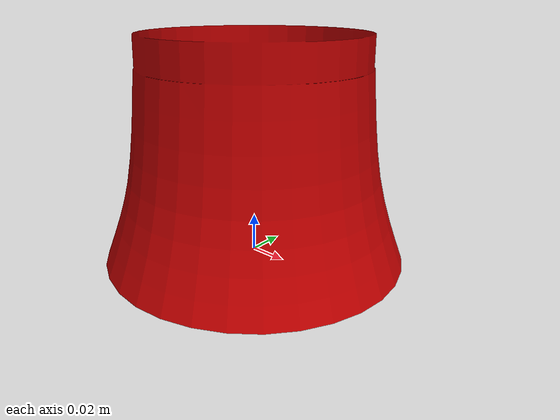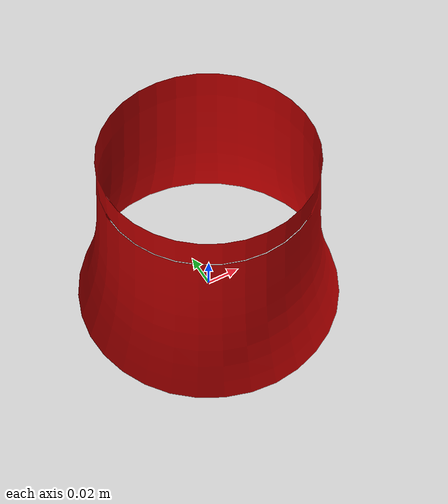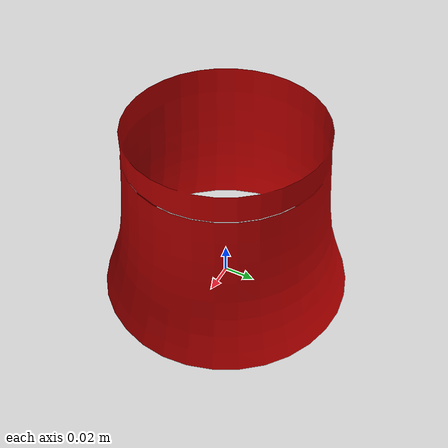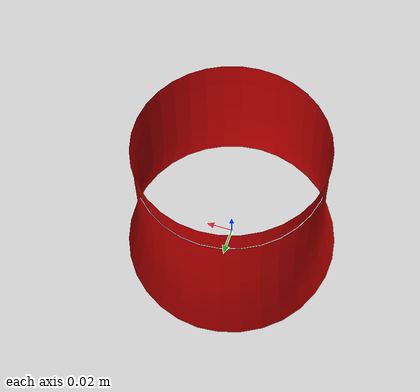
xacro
<?xml version="1.0"?>
<robot name="kuka_lwr_arm" xmlns:sensor="http://playerstage.sourceforge.net/gazebo/xmlschema/#sensor"
       xmlns:controller="http://playerstage.sourceforge.net/gazebo/xmlschema/#controller"
       xmlns:interface="http://playerstage.sourceforge.net/gazebo/xmlschema/#interface"
       xmlns:xacro="http://ros.org/wiki/xacro">

  <!-- Define materials -->
  <material name="UniHB-Red">
    <color rgba="0.8 0.0 0.0 1.0"/>
  </material>

  <material name="Black">
    <color rgba="0.0 0.0 0.0 1.0"/>
  </material>

  <!-- Include utility definitions -->
  <xacro:include filename="$(find iai_kuka_lwr4_description)/defs/util_defs.xml"/>

  <!-- Properties for arm elements -->
  <xacro:property name="arm_elem_base_mass" value="2.0"/>
  <xacro:property name="arm_elem_link_mass" value="2.0"/>
  <xacro:property name="arm_elem_ball_link_mass" value="2.0"/>
  <xacro:property name="arm_elem_end_link_mass" value="2.0"/>
  <xacro:property name="arm_elem_flange_link_mass" value="0.5"/>
  <xacro:property name="safety_controller_k_pos" value="100"/>
  <xacro:property name="safety_controller_k_vel" value="2"/>
  <xacro:property name="joint_damping" value="0.1"/>
  <xacro:property name="arm_velocity_scale_factor" value="1"/>

  <!-- Define the KUKA LWR Arm Macro -->
  <xacro:macro name="kuka_lwr_arm" params="parent prefix *origin color_postfix">
    <joint name="${parent}_${prefix}arm_base_joint" type="fixed">
      <xacro:insert_block name="origin"/>
      <parent link="${parent}"/>
      <child link="calib_${prefix}arm_base_link"/>
    </joint>

    <link name="calib_${prefix}arm_base_link">
      <inertial>
        <mass value="${arm_elem_base_mass}"/>
        <origin xyz="0 0 0.055" rpy="0 0 0"/>
        <xacro:cylinder_inertia_def radius="0.06" length="0.11" mass="${arm_elem_base_mass}"/>
      </inertial>

      <visual>
        <origin xyz="0 0 0" rpy="0 0 0"/>
        <geometry>
          <mesh filename="package://iai_kuka_lwr4_description/meshes/arm_base${color_postfix}.dae" scale="1 1 1"/>
        </geometry>
        <material name="UniHB-Red"/>
      </visual>

      <collision>
        <origin xyz="0 0 0" rpy="0 0 0"/>
        <geometry>
          <mesh filename="package://iai_kuka_lwr4_description/meshes/convex/arm_base_convex.stl"/>
        </geometry>
      </collision>
    </link>

    <gazebo reference="calib_${prefix}arm_base_link">
      <material value="kuka-lwr.material"/>
    </gazebo>

    <!-- Additional links and joints go here -->
    <!-- To-do:=define arm_1_link, arm_2_link, and so forth similarly -->

  </xacro:macro>

  <!-- Instantiate the Arm Macro -->
  <link name="world"/>
  <xacro:kuka_lwr_arm parent="world" prefix="kuka_" color_postfix="_blue">
    <origin xyz="0 0 0" rpy="0 0 0"/>
  </xacro:kuka_lwr_arm>

</robot>
